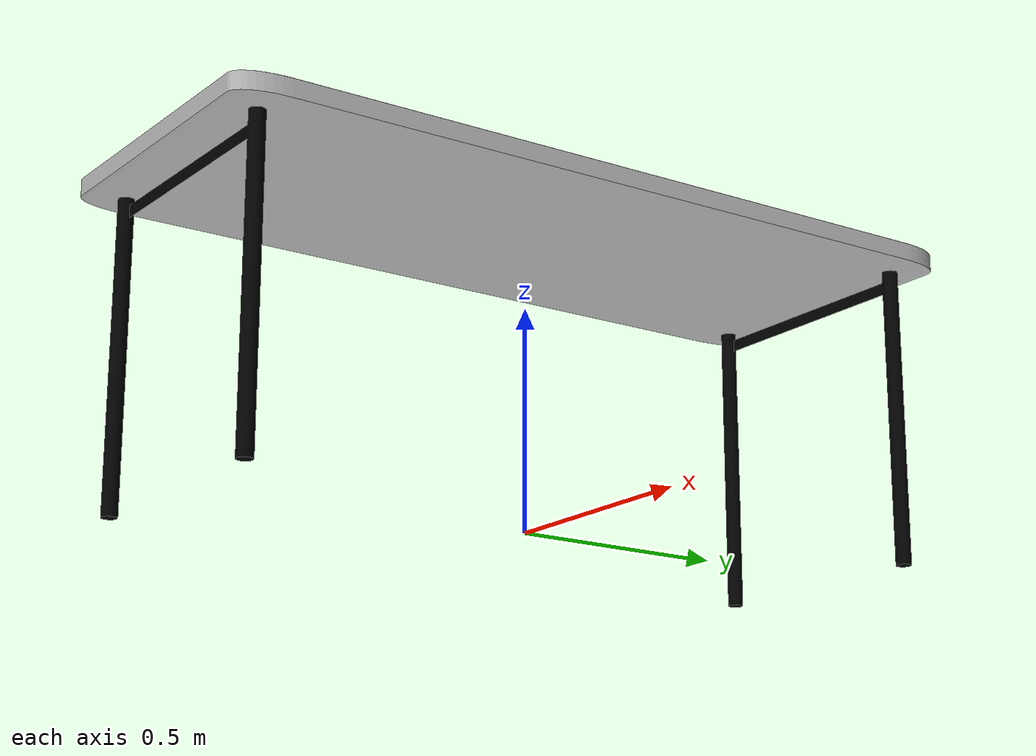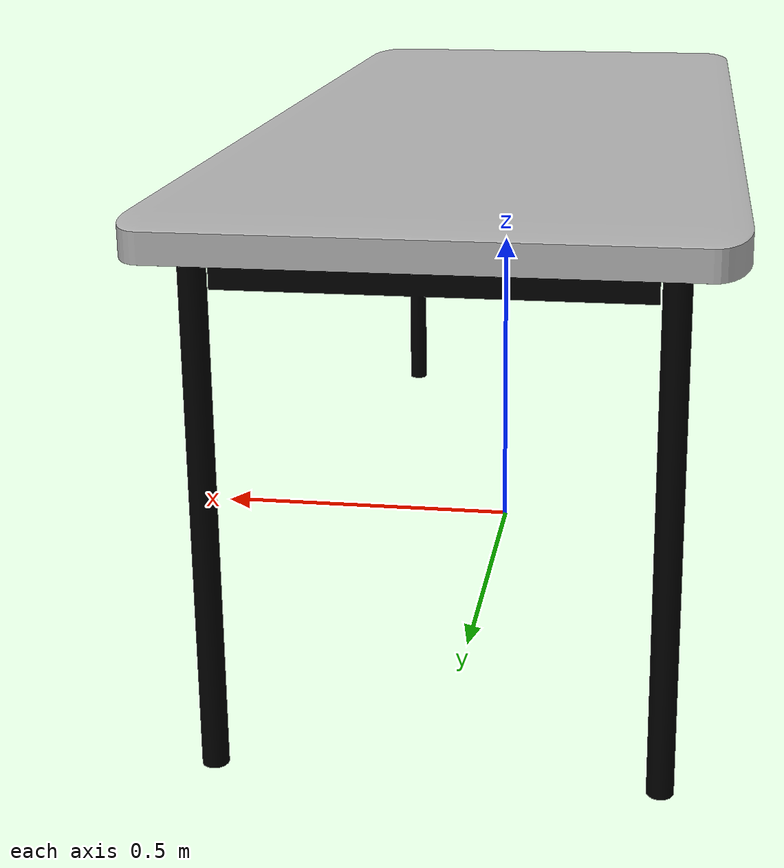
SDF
<?xml version="1.0"?>
<sdf version="1.6">
  <model name="table">
    <static>true</static>

    <link name="main_link">

      <visual name="visual">
        <geometry>
          <mesh><uri>model://table/meshes/table.dae</uri></mesh>
        </geometry>
      </visual>

      <collision name="collision">
        <geometry>
          <mesh><uri>model://table/meshes/table.dae</uri></mesh>
        </geometry>
      </collision>

    </link>
  </model>
</sdf>
